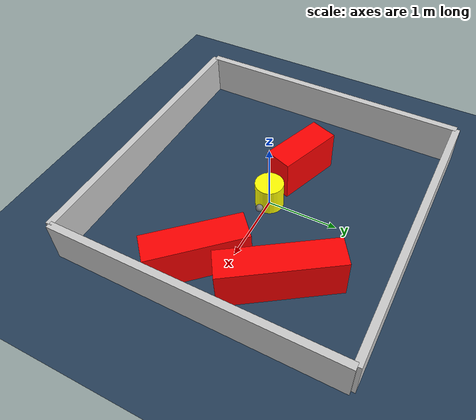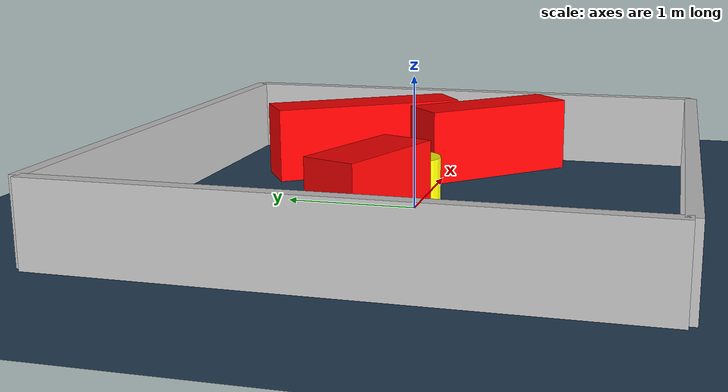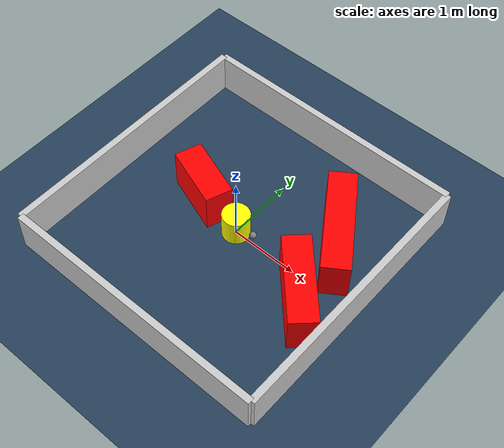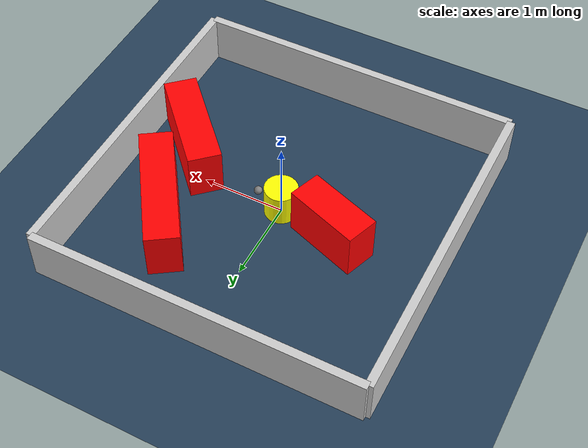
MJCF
<?xml version="1.0" ?>
<mujoco model="generated_environment">
  <option timestep="0.01" integrator="RK4" cone="elliptic"/>
  <default>
    <geom density="1"/>
  </default>
  <asset>
    <texture builtin="gradient" height="3072" rgb1="0.3 0.5 0.7" rgb2="0 0 0" type="skybox" width="512"/>
    <texture builtin="checker" height="300" mark="edge" markrgb="0.8 0.8 0.8" name="groundplane" rgb1="0.2 0.3 0.4" rgb2="0.1 0.2 0.3" type="2d" width="300"/>
    <material name="groundplane" reflectance="0.2" texrepeat="5 5" texture="groundplane" texuniform="true"/>
    <material name="robot" rgba="0.0 1.0 0.0 1"/>
  </asset>
  <worldbody>
    <light dir="0 0 -1" directional="true" pos="0 0 1.5"/>
    <geom condim="4" friction="1.0 0.005 0.001" material="groundplane" name="floor" size="0 0 0.05" type="plane"/>
    <body name="walls">
      <geom name="wall_1" condim="4" pos="-2.0 0.0 0.3" rgba="0.800000011920929 0.800000011920929 0.800000011920929 1.0" size="0.05 2.0 0.3" type="box"/>
      <geom name="wall_2" condim="4" pos="2.0 0.0 0.3" rgba="0.800000011920929 0.800000011920929 0.800000011920929 1.0" size="0.05 2.0 0.3" type="box"/>
      <geom name="wall_3" condim="4" pos="0.0 -2.0 0.3" rgba="0.800000011920929 0.800000011920929 0.800000011920929 1.0" size="2.0 0.05 0.3" type="box"/>
      <geom name="wall_4" condim="4" pos="0.0 2.0 0.3" rgba="0.800000011920929 0.800000011920929 0.800000011920929 1.0" size="2.0 0.05 0.3" type="box"/>
    </body>
    <body name="robot">
      <joint name="joint_x" type="slide" pos="0 0 0" axis="1 0 0"/>
      <joint name="joint_y" type="slide" pos="0 0 0" axis="0 1 0"/>
      <geom name="robot" type="sphere" pos="0.3 0.0 0.2" size="0.05" mass="5." friction="1.0 0.005 0.0001" condim="4" rgba="0.5 0.5 0.5 1.0"/>
      <site name="sensor_ball"/>
    </body>
    <body name="obstacle_movable_1">
      <geom name="obstacle_movable_1" condim="4" pos="0.0 0.0 0.2" euler="0 0 0.0" friction="1.0 0.005 0.001" rgba="1.0 1.0 0.0 1.0" size="0.2 0.2 0.0" type="cylinder" mass="0.1"/>
      <joint type="free"/>
    </body>
    <body name="obstacle_2_static">
      <geom name="obstacle_2_static" condim="4" pos="-0.7144690373559623 0.13717958742797132 0.3" euler="0 0 160.21494109680768" friction="1.0 0.005 0.001" rgba="1 0 0 1" size="0.46137163317603247 0.2 0.3" type="box"/>
    </body>
    <body name="obstacle_3_static">
      <geom name="obstacle_3_static" condim="4" pos="1.3518776144061722 -0.32196995399310846 0.3" euler="0 0 133.325145023094" friction="1.0 0.005 0.001" rgba="1 0 0 1" size="0.6581537579306195 0.2 0.3" type="box"/>
    </body>
    <body name="obstacle_4_static">
      <geom name="obstacle_4_static" condim="4" pos="1.1617344770525502 0.7338141672598579 0.3" euler="0 0 124.09445558576412" friction="1.0 0.005 0.001" rgba="1 0 0 1" size="0.7926258929856742 0.2 0.3" type="box"/>
    </body>
  </worldbody>
  <actuator>
    <motor name="actuator_x" joint="joint_x" gear="1" ctrlrange="-1 1"/>
    <motor name="actuator_y" joint="joint_y" gear="1" ctrlrange="-1 1"/>
  </actuator>
</mujoco>
